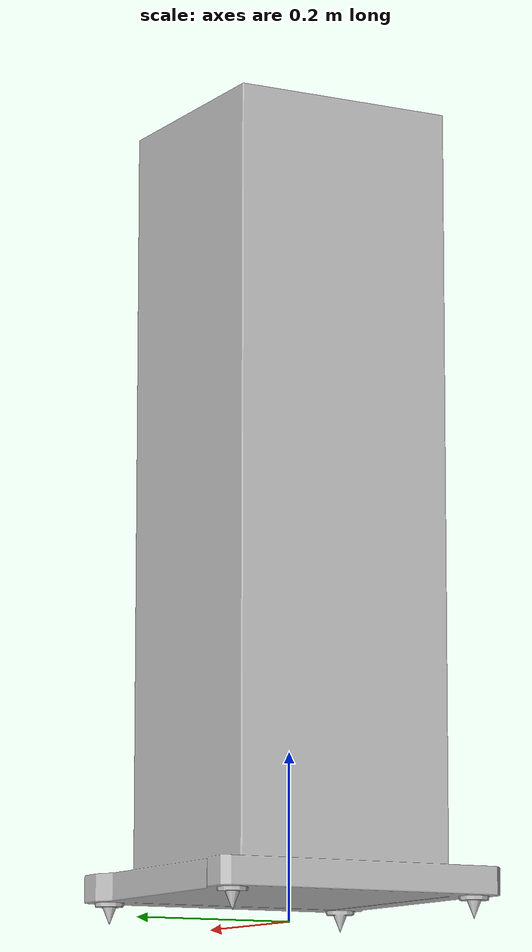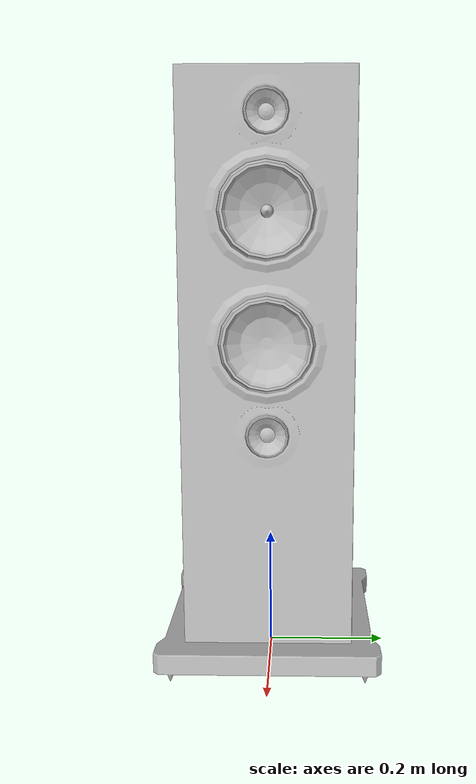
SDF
<?xml version='1.0'?>
<sdf version='1.4'>
  <model name='278'>
    <pose>0 0 0 0 0 0</pose>
    <static>true</static>
    <link name='link'>
      <collision name='collision'>
        <pose>0 0 0 0 0 0</pose>
        <geometry>
          <box>
            <size>0.366852 0.366852 2</size>
          </box>
        </geometry>
      </collision>
      <visual name='visual'>
        <pose>0 0 0 0 0 0</pose>
        <geometry>
          <mesh><uri>model://278/278.dae</uri></mesh>
        </geometry>
      </visual>
    </link>
  </model>
</sdf>
